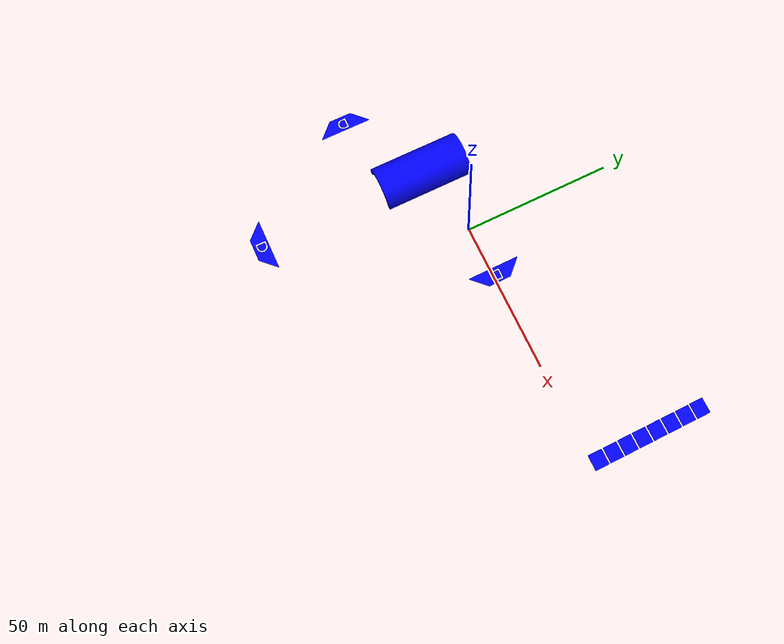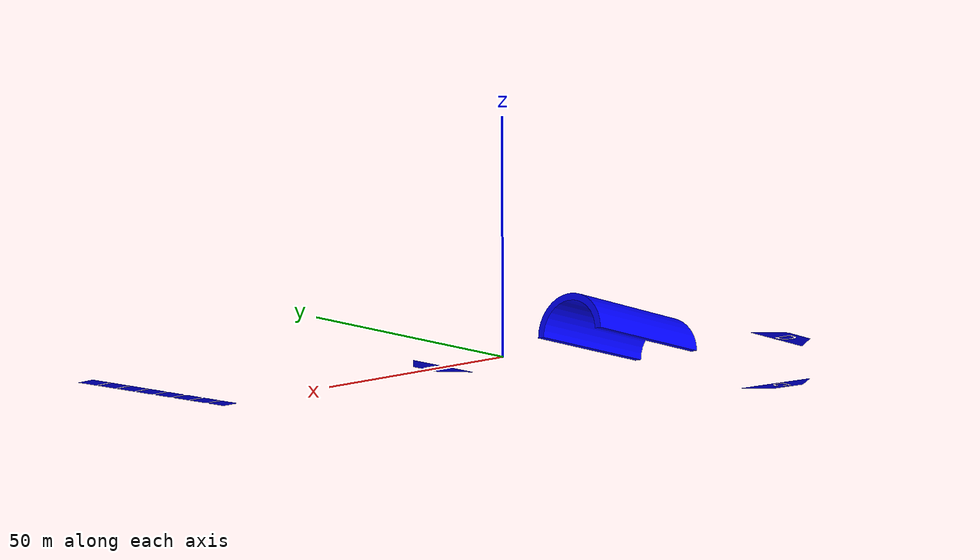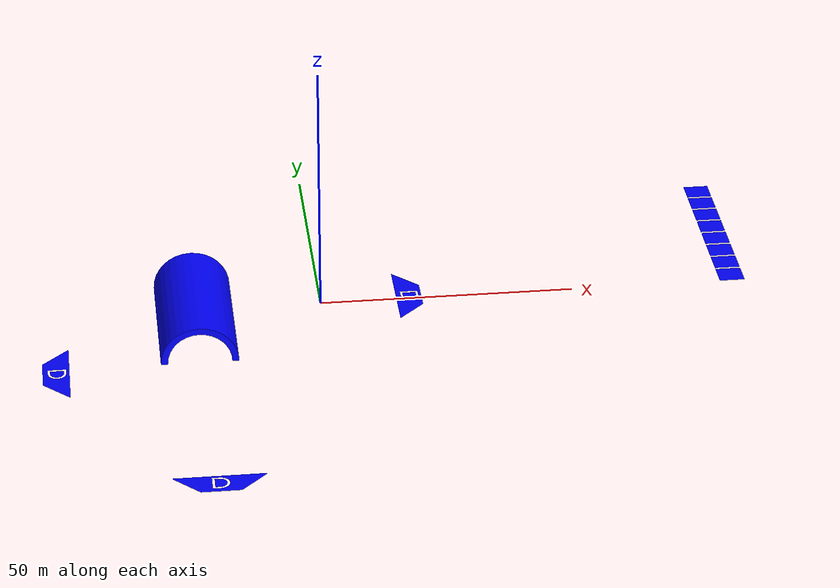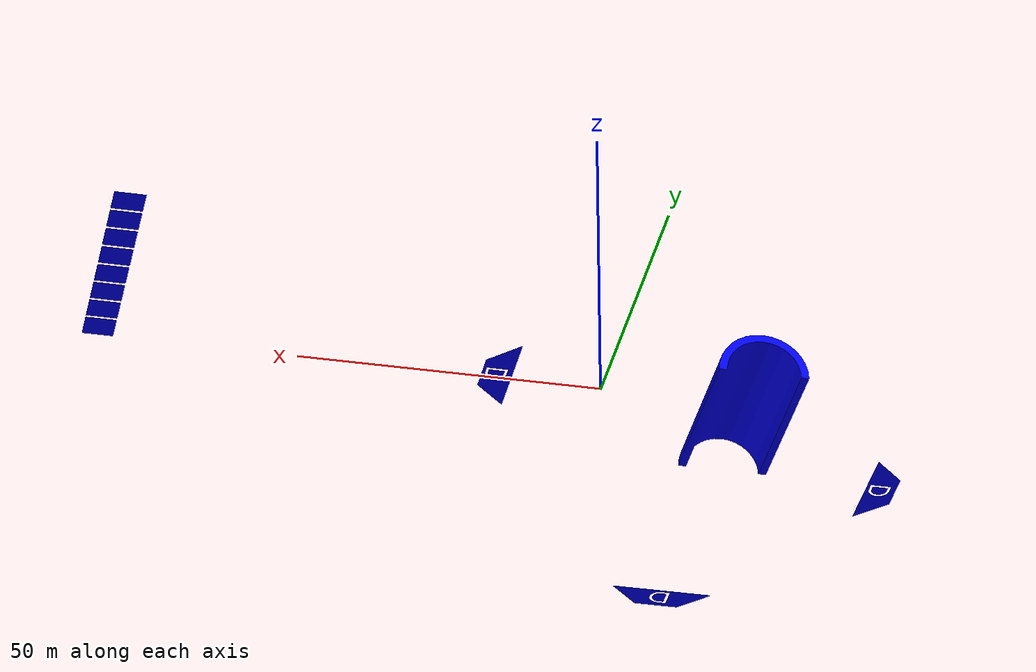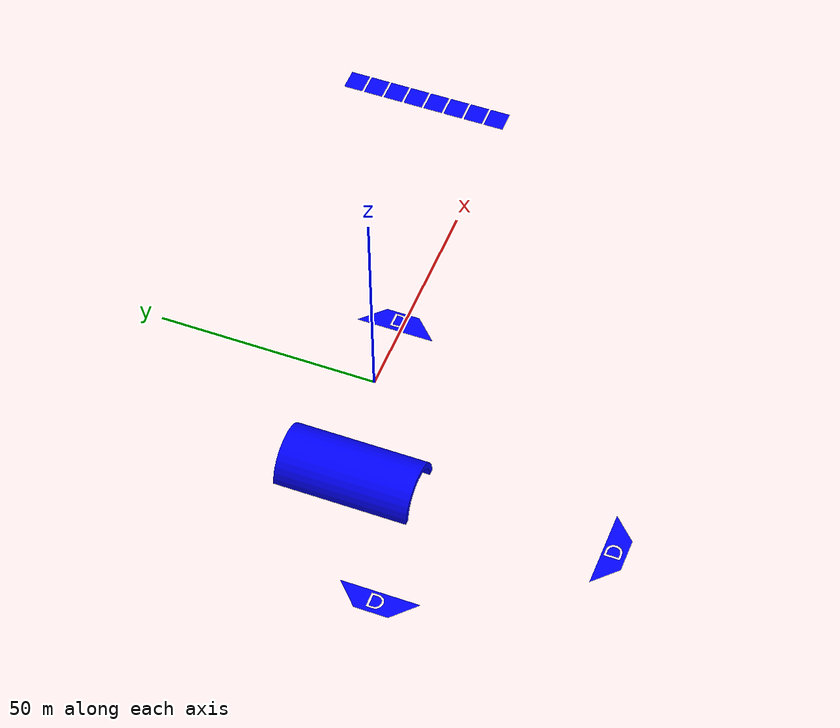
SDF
<?xml version="1.0"?>
<sdf version="1.6">
  <model name="maviler">
    <static>true</static>
    <link name="link">
      <visual name="visual">
        <geometry><mesh><scale>0.25 0.25 0.25</scale>
            <uri>model://maviler/meshes/mavi.dae</uri></mesh></geometry>
        <material><ambient>0 0 1 1</ambient><diffuse>0 0 1 1</diffuse></material>
      </visual>
      <collision name="collision">
        <geometry><mesh><scale>0.25 0.25 0.25</scale>
            <uri>model://maviler/meshes/mavi.dae</uri></mesh></geometry>
      </collision>
    </link>
  </model>
</sdf>
